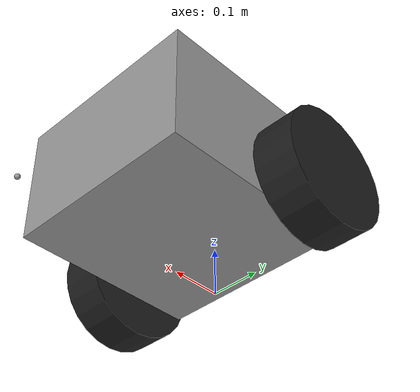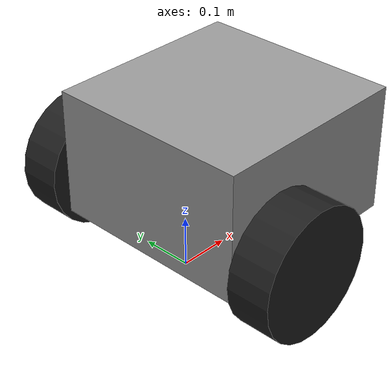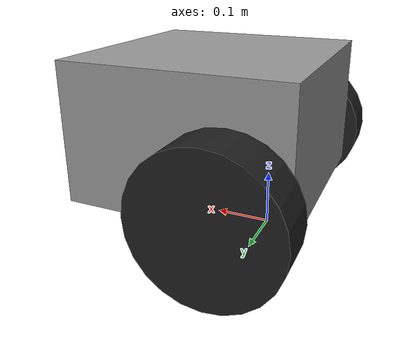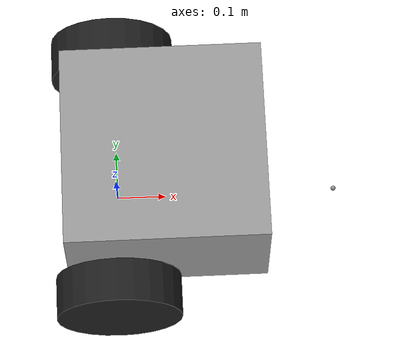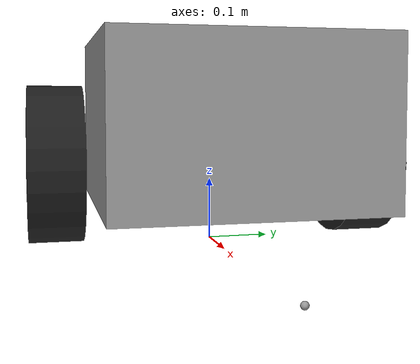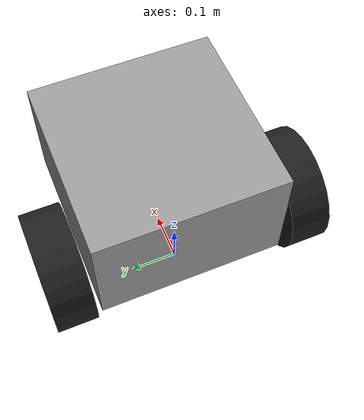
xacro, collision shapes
<?xml version="1.0"?>
<robot xmlns:xacro="http://www.ros.org/wiki/xacro"
       name="mp500" >
  <xacro:include filename="$(find mp500_description)/urdf/mp500.gazebo"/>
  <xacro:property name="M_PI" value="3.1415926535897931" />
  <xacro:property name="safety_offset" value="0.02"/>

<!-- Materials -->

<!--++++++++++++++++++++++++++++++base_link++++++++++++++++++++++++++++++++++++++++++++++++++++-->

  <link name="base_link">
       <inertial>
          <mass value="25.67" />
	    <origin xyz="0.15 0 0.2" rpy="0 0 0"/>
	<inertia ixx="1.08" ixy="0.0" ixz="0.0" iyy="1.08" iyz="0.0" izz="1.23" />
       </inertial>

       <visual name='body'>
	<origin xyz="0 0 0.09" rpy="0 0 -1.57" /><!-- for STL -->
              <geometry>
                 <mesh filename="package://mp500_description/meshes/MP500-BODY.STL" scale="0.01 0.01 0.01"/>
	      </geometry>
        <material name="Neobotix/Grey" />
       </visual>
      <collision name='body_collision'>
        <origin xyz="0.1 0 0.2" rpy="0 0 -1.57" />
        <geometry>
          <box size="0.400 0.400 0.250"/>
        </geometry>
      </collision>
      <visual>
	  <origin xyz="0.45 0 0.01" rpy="0 0 0" />
	  <geometry>
            <sphere radius="0.005"/>
	  </geometry>
	 <material name="Neobotix/Grey" />
	</visual>

        <collision>
	  <origin xyz="0.45 0 0.01" rpy="0 0 0" />
	  <geometry>
             <sphere radius="0.005"/>
	  </geometry>
	</collision>
    </link>

<!--+++++++++++++++++++wheel_left_link++++++++++++++++++++++++-->
   <link name="wheel_left_link" type="wheel">
      <inertial>
      	<mass value="1.0" />
     	   <origin xyz="0 0 0" rpy="0 0 0" />
      	 <inertia ixx="0.0045" ixy="0" ixz="0" iyy="0.0078" iyz="0" izz="0.0045" />
      </inertial>

      <visual>
     	<origin xyz="0 0 0" rpy="0 0 -1.57" />
     	<geometry>
		<mesh filename="package://mp500_description/meshes/MP500-WHEEL.STL" scale="0.01 0.01 0.01" />
     	</geometry>
     	<material name="Neobotix/Black" />
      </visual>

    <collision>
     	<origin xyz="0 0 0" rpy="0 1.57 -1.57" />
     	<geometry>
        	<cylinder radius="0.125" length="0.085"/>
     	</geometry>
    </collision>

</link>

<!--+++++++++++++++++++wheel_left_joint++++++++++++++++++++++++-->
  <joint name="wheel_left_joint" type="revolute">
     <origin xyz="0 0.255 0.13" rpy="0 0 0" />
    	<axis xyz="0 1 0"/>
    	<limit effort="10000.0" lower="-1e+16" upper="1e+16" velocity="11.6"/>
    	<joint_properties damping="0.0" friction="0.0" />
    	<parent link="base_link" />
     <child link="wheel_left_link" />
    </joint>

<!--+++++++++++++++++++wheel_right_link++++++++++++++++++++++++-->

  <link name="wheel_right_link" type="wheel">
     <inertial>
      <mass value="1" />
      <origin xyz="0 0 0" rpy="0 0 0" />
		  <!--inertia ixx="0.0051" ixy="0" ixz="0" iyy="0.0051" iyz="0" izz="0.009" /-->
       <inertia ixx="0.0045" ixy="0" ixz="0" iyy="0.0078" iyz="0" izz="0.0045" />
     </inertial>

     <visual>
	<origin xyz="0 0 0" rpy="0 0 -1.57" />
	<geometry>
	 <mesh filename="package://mp500_description/meshes/MP500-WHEEL.STL" scale="0.01 0.01 0.01" />
	</geometry>
	<material name="Neobotix/Black" />
     </visual>

     <collision>
	<origin xyz="0 0 0" rpy="0 1.57 -1.57" />
	<geometry>
		<cylinder radius="0.125" length="0.085"/>
	</geometry>
    </collision>
   </link>

<!--+++++++++++++++++++wheel_right_joint++++++++++++++++++++++++-->
   <joint name="wheel_right_joint" type="revolute">
     <origin xyz="0 -0.255 0.13" rpy="0 0 0" />
    	<axis xyz="0 1 0"/>
    	<limit effort="10000.0" lower="-1e+16" upper="1e+16" velocity="11.6"/>
    	<joint_properties damping="0.0" friction="0.0" />
    	<parent link="base_link" />
    	<child link="wheel_right_link" />
    </joint>

<transmission name="wheel_left_trans">
    <type>transmission_interface/SimpleTransmission</type>
    <joint name="wheel_left_joint">
      <hardwareInterface>hardware_interface/VelocityJointInterface</hardwareInterface>
    </joint>
    <actuator name="wheel_left_motor">
      <hardwareInterface>hardware_interface/EffortJointInterface</hardwareInterface>
      <mechanicalReduction>0.09</mechanicalReduction>
    </actuator>
  </transmission>

  <transmission name="wheel_right_trans">
    <type>transmission_interface/SimpleTransmission</type>
    <joint name="wheel_right_joint">
      <hardwareInterface>hardware_interface/VelocityJointInterface</hardwareInterface>
    </joint>
    <actuator name="wheel_right_motor">
      <hardwareInterface>hardware_interface/EffortJointInterface</hardwareInterface>
      <mechanicalReduction>0.09</mechanicalReduction>
    </actuator>
  </transmission>

 <gazebo>
    <plugin name="differential_drive_controller" filename="libgazebo_ros_diff_drive.so">
      <robotNamespace>/mp500</robotNamespace>
      <alwaysOn>true</alwaysOn>
      <updateRate>100</updateRate>
      <leftJoint>wheel_left_joint</leftJoint>
      <rightJoint>wheel_right_joint</rightJoint>
      <wheelSeparation>0.51</wheelSeparation>
      <wheelDiameter>0.125</wheelDiameter>
      <torque>45</torque>
      <commandTopic>/mp500/mobile_base_controller/cmd_vel</commandTopic>
      <odometryTopic>odom</odometryTopic>
      <odometryFrame>map</odometryFrame>
      <robotBaseFrame>base_link</robotBaseFrame>
      <legacyMode>false</legacyMode>
      <rosDebugLevel>Debug</rosDebugLevel>
      <publishWheelTF>true</publishWheelTF>
      <publishWheelJointState>true</publishWheelJointState>
      <wheelAcceleration>0.01</wheelAcceleration>
      <wheelTorque>50</wheelTorque>
      <publishTf>1</publishTf>
      <odometrySource>encoder</odometrySource>
    </plugin>

    <!--plugin name="ros_control" filename="libhwi_switch_gazebo_ros_control.so"-->
     <plugin name="gazebo_ros_control" filename="libgazebo_ros_control.so">
        <!--plugin name="ros_control" filename="libhwi_switch_gazebo_ros_control.so"-->
        <robotNamespace>mp500</robotNamespace>
        <filterJointsParam>joint_names</filterJointsParam>
     </plugin>
  </gazebo>

</robot>
